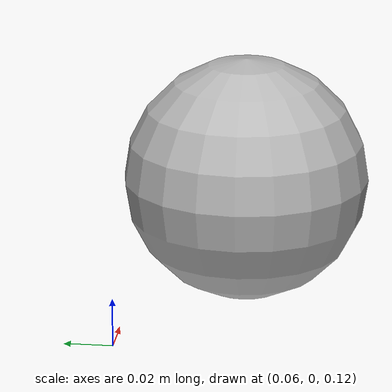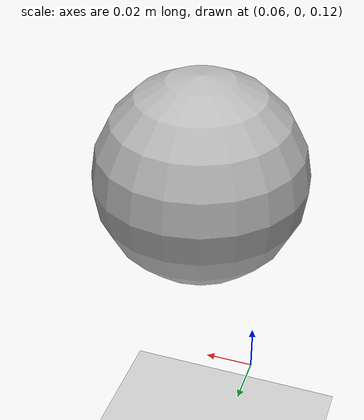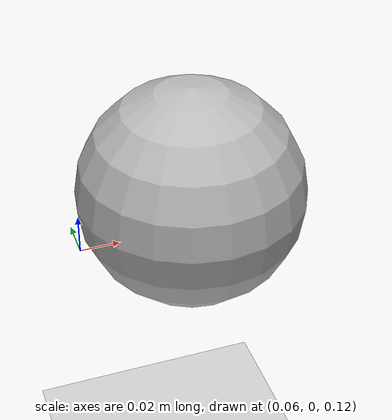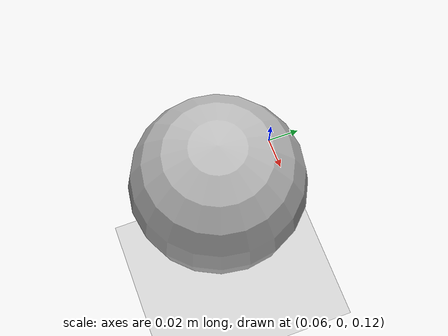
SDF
<?xml version="1.0" ?>

<sdf version="1.4">
  <world name="default">
    <include>
      <uri>model://ground_plane</uri>
    </include>

    <include>
      <uri>model://sun</uri>
    </include>

    <physics type="ode">
      <real_time_update_rate>1000.0</real_time_update_rate>
      <gravity>
        0.0 0.0 -9.81
      </gravity>
    </physics>

    <model name="ball">
      <link name="link">
        <!-- z position is radius + thickness of ReFlex Hand, so ball can rest
               on top of fingers.
             +x is off-center towards fore-fingers
             +y is off-center towards finger 1 -->
        <pose>0.1 -0.05 0.18 0 0 0</pose>

        <collision name="ball_collision">
          <geometry>
            <sphere>
              <radius>0.05</radius>
            </sphere>
          </geometry>
        </collision>

        <visual name="visual">
          <geometry>
            <sphere>
              <radius>0.05</radius>
            </sphere>
          </geometry>
        </visual>

        <!-- lib*.so is compiled from a custom C++ file -->

      </link>
    </model>

    <!--plugin name="world_plugin" filename="libworld_plugin.so" /-->

  </world>
</sdf>
